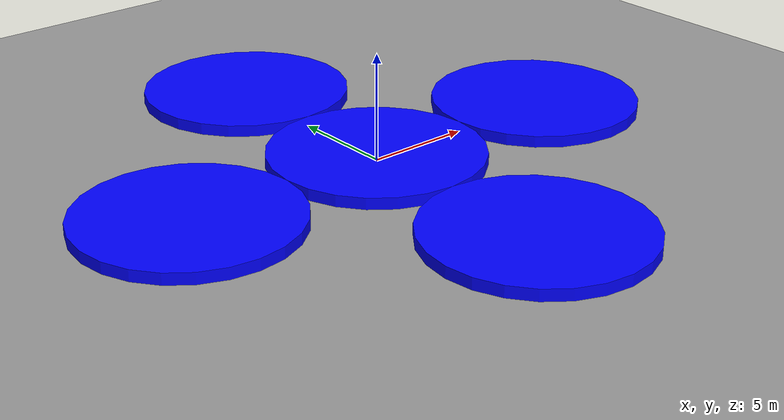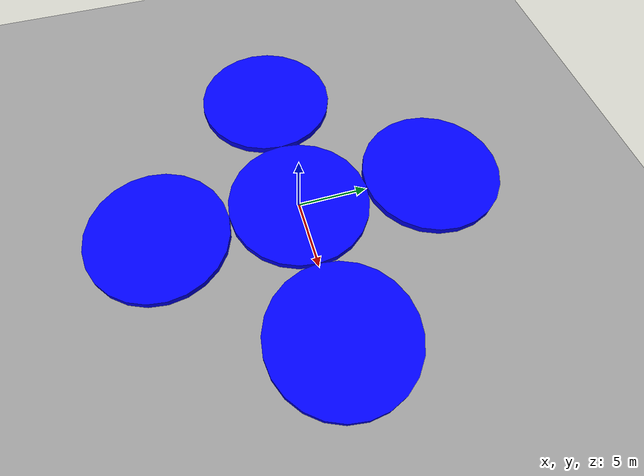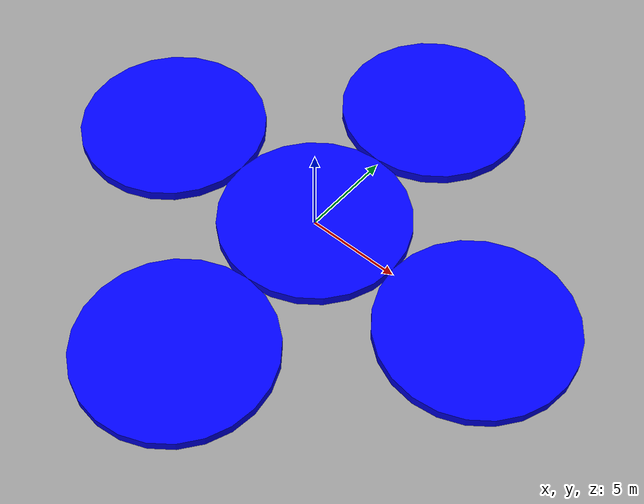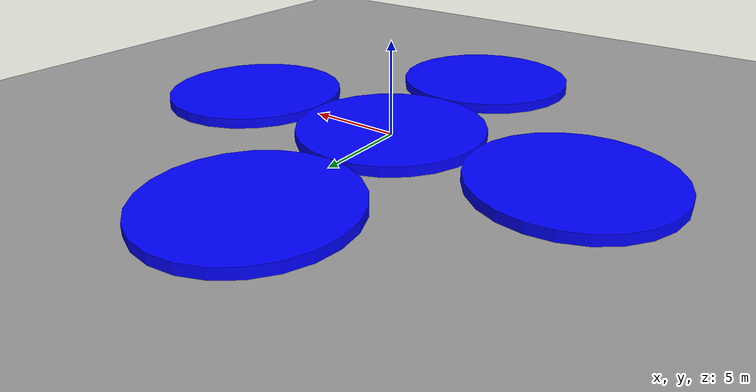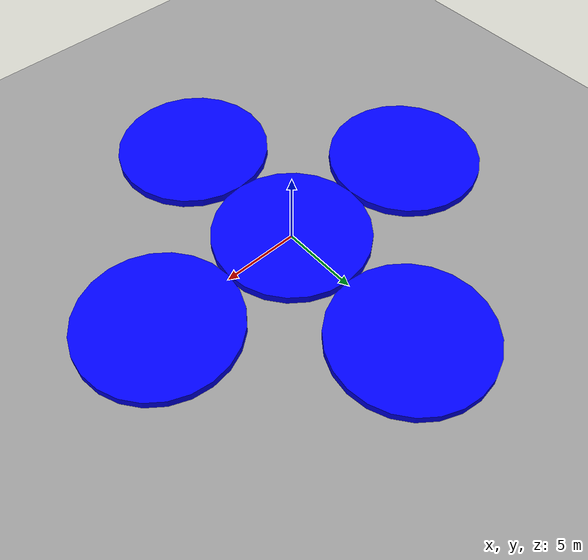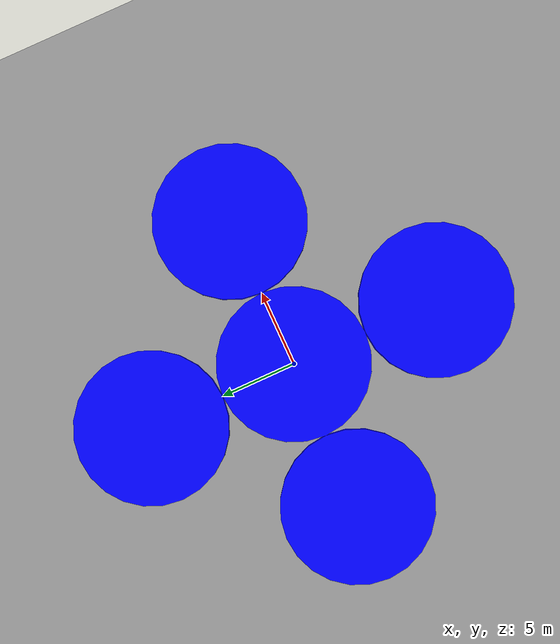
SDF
<sdf version="1.9">
 <world name="default">
  <physics type="ode">
   <max_step_size>0.01</max_step_size>
   <real_time_update_rate>60</real_time_update_rate>
  </physics>
  <model name="ground_plane">
   <static>true</static>
   <link name="link">
    <collision name="collision">
     <geometry><plane><normal>0 0 1</normal><size>100 100</size></plane></geometry>
     <surface><contact><collide_without_contact_bitmask>0x01</collide_without_contact_bitmask></contact></surface>
    </collision>
    <visual name="visual">
     <geometry><plane><normal>0 0 1</normal><size>100 100</size></plane></geometry>
     <material><ambient>0.6 0.6 0.6 1</ambient><diffuse>0.6 0.6 0.6 1</diffuse></material>
    </visual>
   </link>
  </model>
  <model name="moving_cylinder_1">
   <link name="moving_link">
    <gravity>false</gravity>
    <visual name="visual">
     <geometry><cylinder><radius>5.0</radius><length>1.0</length></cylinder></geometry>
     <material><ambient>0 0 1 1</ambient></material>
    </visual>
   </link>
   <motion>
    <link_name>moving_link</link_name>
    <direction>1 0 0</direction>
    <amplitude>0</amplitude>
    <speed>0</speed>
    <turnaround_threshold>0.5</turnaround_threshold>
   </motion>
  </model>
  <model name="moving_cylinder_2">
   <pose>10.0 0.0 0 0 0 0</pose>
   <link name="moving_link">
    <gravity>false</gravity>
    <visual name="visual">
     <geometry><cylinder><radius>5.0</radius><length>1.0</length></cylinder></geometry>
     <material><ambient>0 0 1 1</ambient></material>
    </visual>
   </link>
   <motion>
    <link_name>moving_link</link_name>
    <direction>1 0 0</direction>
    <amplitude>0</amplitude>
    <speed>0</speed>
    <turnaround_threshold>0.5</turnaround_threshold>
   </motion>
  </model>
  <model name="moving_cylinder_3">
   <pose>-10.0 0.0 0 0 0 0</pose>
   <link name="moving_link">
    <gravity>false</gravity>
    <visual name="visual">
     <geometry><cylinder><radius>5.0</radius><length>1.0</length></cylinder></geometry>
     <material><ambient>0 0 1 1</ambient></material>
    </visual>
   </link>
   <motion>
    <link_name>moving_link</link_name>
    <direction>1 0 0</direction>
    <amplitude>0</amplitude>
    <speed>0</speed>
    <turnaround_threshold>0.5</turnaround_threshold>
   </motion>
  </model>
  <model name="moving_cylinder_4">
   <pose>0.0 10.0 0 0 0 0</pose>
   <link name="moving_link">
    <gravity>false</gravity>
    <visual name="visual">
     <geometry><cylinder><radius>5.0</radius><length>1.0</length></cylinder></geometry>
     <material><ambient>0 0 1 1</ambient></material>
    </visual>
   </link>
   <motion>
    <link_name>moving_link</link_name>
    <direction>1 0 0</direction>
    <amplitude>0</amplitude>
    <speed>0</speed>
    <turnaround_threshold>0.5</turnaround_threshold>
   </motion>
  </model>
  <model name="moving_cylinder_5">
   <pose>0.0 -10.0 0 0 0 0</pose>
   <link name="moving_link">
    <gravity>false</gravity>
    <visual name="visual">
     <geometry><cylinder><radius>5.0</radius><length>1.0</length></cylinder></geometry>
     <material><ambient>0 0 1 1</ambient></material>
    </visual>
   </link>
   <motion>
    <link_name>moving_link</link_name>
    <direction>1 0 0</direction>
    <amplitude>0</amplitude>
    <speed>0</speed>
    <turnaround_threshold>0.5</turnaround_threshold>
   </motion>
  </model>
 </world>
</sdf>
